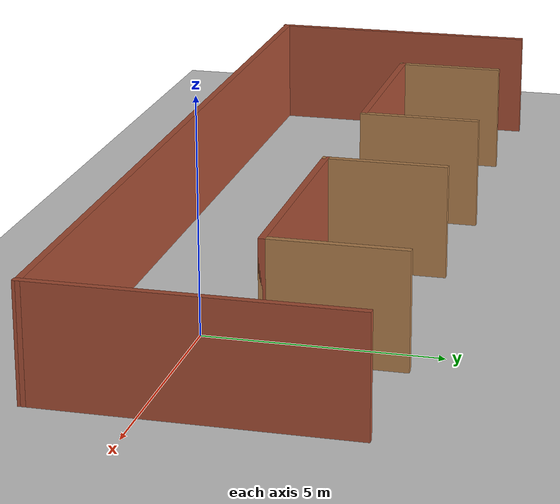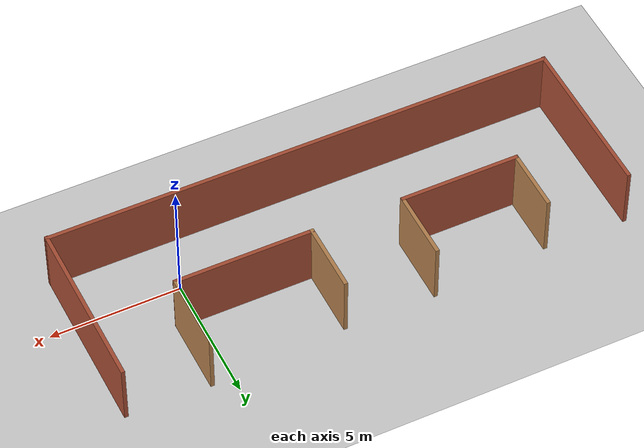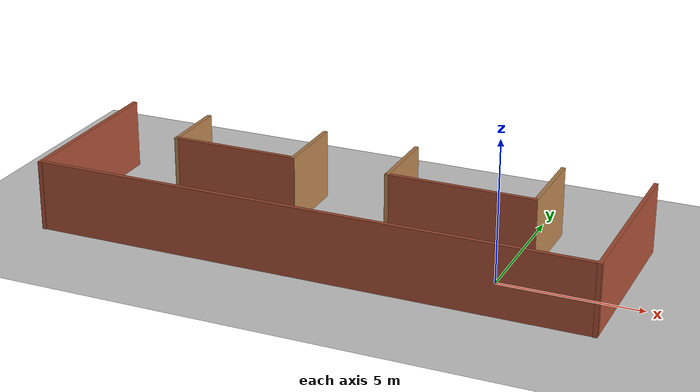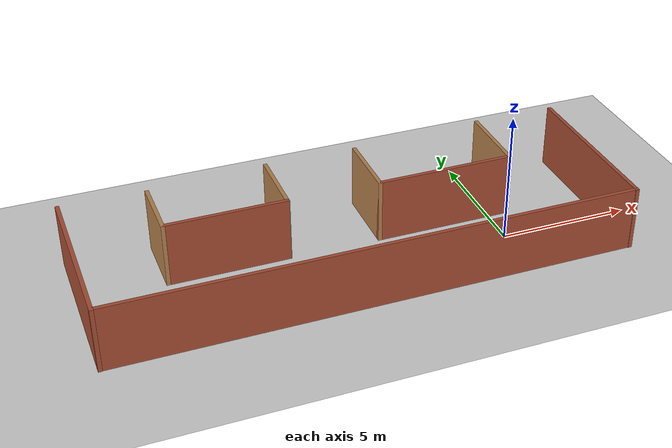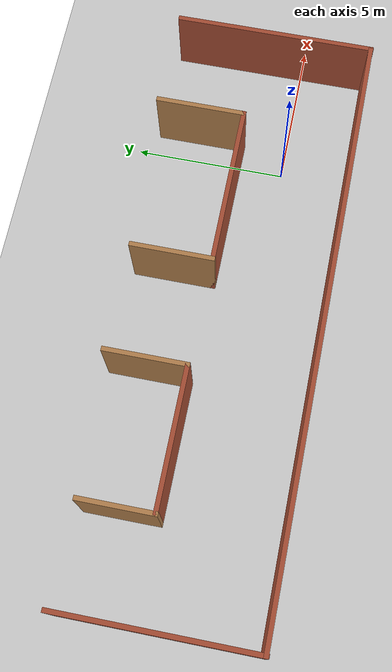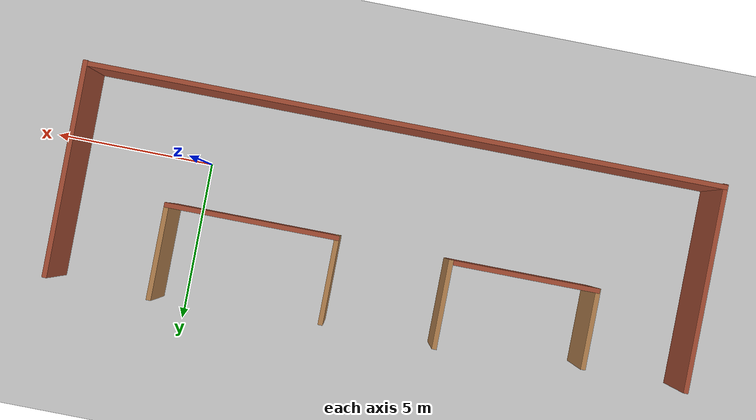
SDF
<sdf version="1.7">
 <world name="default">
  <light name="sun" type="directional">
   <pose>0 0 10 0 -0 0</pose>
   <diffuse>0.8 0.8 0.8 1</diffuse>
   <specular>0.2 0.2 0.2 1</specular>
   <attenuation>
    <range>1000</range>
    <constant>0.9</constant>
    <linear>0.01</linear>
    <quadratic>0.001</quadratic>
   </attenuation>
   <direction>-0.5 0.1 -0.9</direction>
   <spot><inner_angle>0</inner_angle><outer_angle>0</outer_angle><falloff>0</falloff></spot>
  </light>
  <model name="ground_plane">
   <static>1</static>
   <link name="link">
    <collision name="collision">
     <geometry><plane><normal>0 0 1</normal><size>100 100</size></plane></geometry>
     <surface><friction><ode><mu>100</mu><mu2>50</mu2></ode></friction></surface>
    </collision>
    <visual name="visual">
     <cast_shadows>0</cast_shadows>
     <geometry><plane><normal>0 0 1</normal><size>100 100</size></plane></geometry>
     <material>
      <script><uri>file://media/materials/scripts/gazebo.material</uri><name>Gazebo/Grey</name></script>
     </material>
    </visual>
   </link>
  </model>
  <gravity>0 0 -9.8</gravity>
  <magnetic_field>6e-06 2.3e-05 -4.2e-05</magnetic_field>
  <atmosphere type="adiabatic"/>
  <physics type="ode">
   <max_step_size>0.001</max_step_size>
   <real_time_factor>1</real_time_factor>
   <real_time_update_rate>1000</real_time_update_rate>
  </physics>
  <scene><ambient>0.4 0.4 0.4 1</ambient><background>0.7 0.7 0.7 1</background><shadows>1</shadows></scene>
  <spherical_coordinates>
   <surface_model>EARTH_WGS84</surface_model>
   <latitude_deg>0</latitude_deg>
   <longitude_deg>0</longitude_deg>
   <elevation>0</elevation>
   <heading_deg>0</heading_deg>
  </spherical_coordinates>
  <model name="forklift_galway_environment">
   <pose>-5.82941 1.06568 0 0 -0 0</pose>
   <link name="Wall_21">
    <collision name="Wall_21_Collision">
     <geometry><box><size>6.68214 0.15 2.5</size></box></geometry>
     <pose>0 0 1.25 0 -0 0</pose>
    </collision>
    <visual name="Wall_21_Visual">
     <pose>0 0 1.25 0 -0 0</pose>
     <geometry><box><size>6.68214 0.15 2.5</size></box></geometry>
     <material>
      <script><uri>file://media/materials/scripts/gazebo.material</uri><name>Gazebo/Bricks</name></script>
      <ambient>1 1 1 1</ambient>
     </material>
     <meta><layer>0</layer></meta>
    </visual>
    <pose>9.82974 -0.035618 0 0 -0 1.57347</pose>
   </link>
   <link name="Wall_25">
    <collision name="Wall_25_Collision">
     <geometry><box><size>5.37991 0.15 2.5</size></box></geometry>
     <pose>0 0 1.25 0 -0 0</pose>
    </collision>
    <visual name="Wall_25_Visual">
     <pose>0 0 1.25 0 -0 0</pose>
     <geometry><box><size>5.37991 0.15 2.5</size></box></geometry>
     <material>
      <script><uri>file://media/materials/scripts/gazebo.material</uri><name>Gazebo/Bricks</name></script>
      <ambient>1 1 1 1</ambient>
     </material>
     <meta><layer>0</layer></meta>
    </visual>
    <pose>3.99347 0.451874 0 0 -0 3.14159</pose>
   </link>
   <link name="Wall_28">
    <collision name="Wall_28_Collision">
     <geometry><box><size>2.75 0.15 2.5</size></box></geometry>
     <pose>0 0 1.25 0 -0 0</pose>
    </collision>
    <visual name="Wall_28_Visual">
     <pose>0 0 1.25 0 -0 0</pose>
     <geometry><box><size>2.75 0.15 2.5</size></box></geometry>
     <material>
      <script><uri>file://media/materials/scripts/gazebo.material</uri><name>Gazebo/Wood</name></script>
      <ambient>0 0 0 1</ambient>
     </material>
     <meta><layer>0</layer></meta>
    </visual>
    <pose>-2.13385 1.81683 0 0 -0 -1.5708</pose>
   </link>
   <link name="Wall_29">
    <collision name="Wall_29_Collision">
     <geometry><box><size>4.63315 0.15 2.5</size></box></geometry>
     <pose>0 0 1.25 0 -0 0</pose>
    </collision>
    <visual name="Wall_29_Visual">
     <pose>0 0 1.25 0 -0 0</pose>
     <geometry><box><size>4.63315 0.15 2.5</size></box></geometry>
     <material>
      <script><uri>file://media/materials/scripts/gazebo.material</uri><name>Gazebo/Bricks</name></script>
      <ambient>1 1 1 1</ambient>
     </material>
     <meta><layer>0</layer></meta>
    </visual>
    <pose>-4.39292 0.516829 0 0 -0 3.14159</pose>
   </link>
   <link name="Wall_30">
    <collision name="Wall_30_Collision">
     <geometry><box><size>2.5 0.15 2.5</size></box></geometry>
     <pose>0 0 1.25 0 -0 0</pose>
    </collision>
    <visual name="Wall_30_Visual">
     <pose>0 0 1.25 0 -0 0</pose>
     <geometry><box><size>2.5 0.15 2.5</size></box></geometry>
     <material>
      <script><uri>file://media/materials/scripts/gazebo.material</uri><name>Gazebo/Wood</name></script>
      <ambient>0 0 0 1</ambient>
     </material>
     <meta><layer>0</layer></meta>
    </visual>
    <pose>-6.65763 1.69183 0 0 -0 1.5708</pose>
   </link>
   <link name="Wall_36">
    <collision name="Wall_36_Collision">
     <geometry><box><size>19.8272 0.15 2.5</size></box></geometry>
     <pose>0 0 1.25 0 -0 0</pose>
    </collision>
    <visual name="Wall_36_Visual">
     <pose>0 0 1.25 0 -0 0</pose>
     <geometry><box><size>19.8272 0.15 2.5</size></box></geometry>
     <material>
      <script><uri>file://media/materials/scripts/gazebo.material</uri><name>Gazebo/Bricks</name></script>
      <ambient>1 1 1 1</ambient>
     </material>
     <meta><layer>0</layer></meta>
    </visual>
    <pose>-0.0001 -3.28418 0 0 -0 3.14159</pose>
   </link>
   <link name="Wall_39">
    <collision name="Wall_39_Collision">
     <geometry><box><size>6.43211 0.15 2.5</size></box></geometry>
     <pose>0 0 1.25 0 -0 0</pose>
    </collision>
    <visual name="Wall_39_Visual">
     <pose>0 0 1.25 0 -0 0</pose>
     <geometry><box><size>6.43211 0.15 2.5</size></box></geometry>
     <material>
      <script><uri>file://media/materials/scripts/gazebo.material</uri><name>Gazebo/Bricks</name></script>
      <ambient>1 1 1 1</ambient>
     </material>
     <meta><layer>0</layer></meta>
    </visual>
    <pose>-9.83869 -0.160618 0 0 -0 1.5708</pose>
   </link>
   <link name="Wall_41">
    <collision name="Wall_41_Collision">
     <geometry><box><size>2.75 0.15 2.5</size></box></geometry>
     <pose>0 0 1.25 0 -0 0</pose>
    </collision>
    <visual name="Wall_41_Visual">
     <pose>0 0 1.25 0 -0 0</pose>
     <geometry><box><size>2.75 0.15 2.5</size></box></geometry>
     <material>
      <script><uri>file://media/materials/scripts/gazebo.material</uri><name>Gazebo/Wood</name></script>
      <ambient>0 0 0 1</ambient>
     </material>
     <meta><layer>0</layer></meta>
    </visual>
    <pose>1.37851 1.75187 0 0 -0 1.5708</pose>
   </link>
   <link name="Wall_43">
    <collision name="Wall_43_Collision">
     <geometry><box><size>3 0.15 2.5</size></box></geometry>
     <pose>0 0 1.25 0 -0 0</pose>
    </collision>
    <visual name="Wall_43_Visual">
     <pose>0 0 1.25 0 -0 0</pose>
     <geometry><box><size>3 0.15 2.5</size></box></geometry>
     <material>
      <script><uri>file://media/materials/scripts/gazebo.material</uri><name>Gazebo/Wood</name></script>
      <ambient>0 0 0 1</ambient>
     </material>
     <meta><layer>0</layer></meta>
    </visual>
    <pose>6.60842 1.87687 0 0 -0 1.5708</pose>
   </link>
   <static>1</static>
  </model>
 </world>
</sdf>
